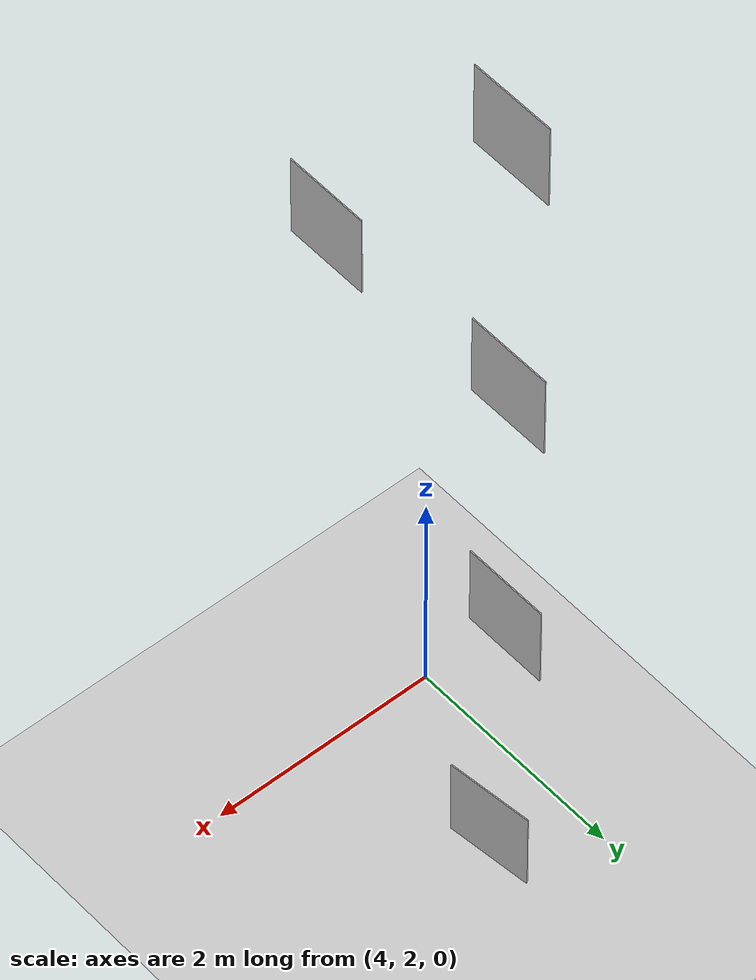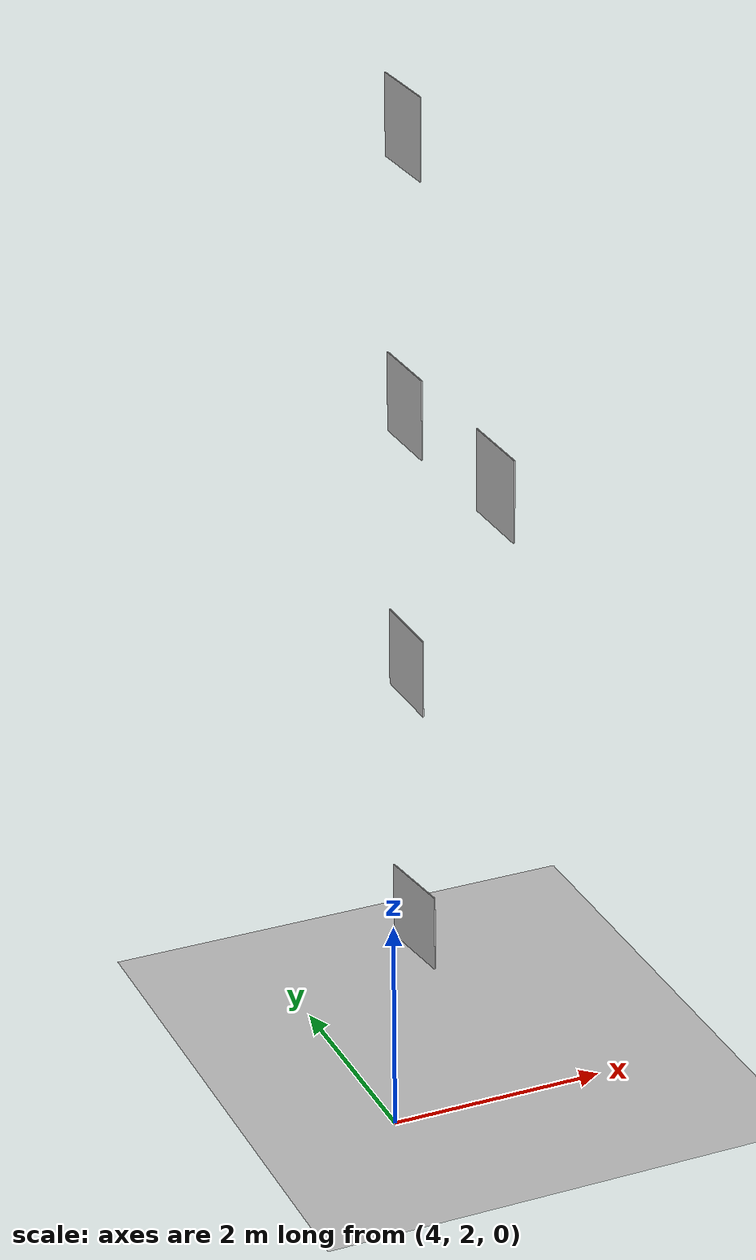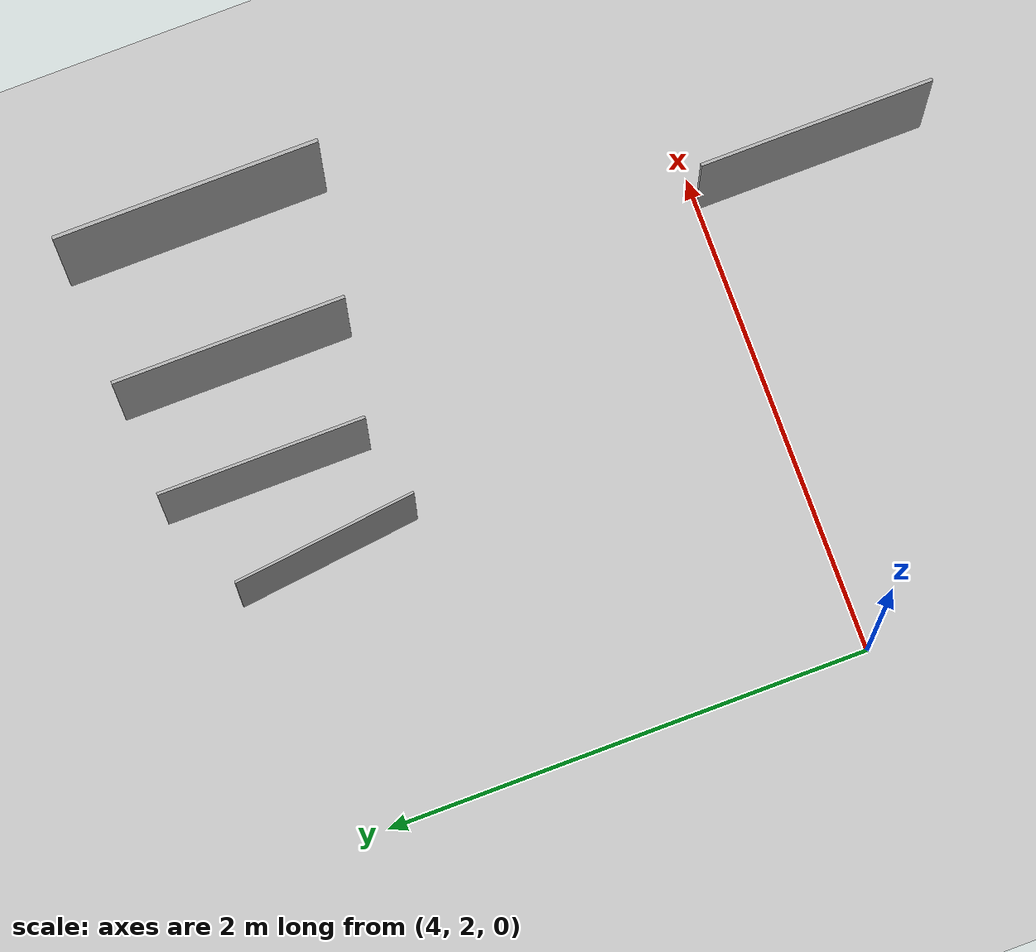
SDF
<sdf version="1.7">
 <world name="default">
  <model name="ground_plane">
   <static>1</static>
   <link name="link">
    <collision name="collision">
     <geometry><plane><normal>0 0 1</normal><size>100 100</size></plane></geometry>
     <surface>
      <contact><collide_bitmask>65535</collide_bitmask></contact>
      <friction><ode><mu>100</mu><mu2>50</mu2></ode></friction>
     </surface>
    </collision>
    <visual name="visual">
     <cast_shadows>0</cast_shadows>
     <geometry><plane><normal>0 0 1</normal><size>100 100</size></plane></geometry>
     <material>
      <script><uri>file://media/materials/scripts/gazebo.material</uri><name>Gazebo/Grey</name></script>
     </material>
    </visual>
   </link>
  </model>
  <model name="WayPoint5_prac">
   <static>1</static>
   <link name="link">
    <collision name="collision"><geometry><box><size>0.75 0.01 0.75</size></box></geometry></collision>
    <visual name="visual">
     <geometry><box><size>0.75 0.01 0.75</size></box></geometry>
     <material>
      <script>
       <uri>model://WayPoint5_prac/materials/scripts</uri>
       <uri>model://WayPoint5_prac/materials/textures</uri>
       <name>vrc/WayPoint5_prac</name>
      </script>
     </material>
    </visual>
   </link>
   <pose>5 3.85592 0.9 0 0 -1.45663</pose>
  </model>
  <model name="WayPoint5_prac2">
   <static>1</static>
   <link name="link">
    <collision name="collision"><geometry><box><size>0.75 0.01 0.75</size></box></geometry></collision>
    <visual name="visual">
     <geometry><box><size>0.75 0.01 0.75</size></box></geometry>
     <material>
      <script>
       <uri>model://WayPoint5_prac2/materials/scripts</uri>
       <uri>model://WayPoint5_prac2/materials/textures</uri>
       <name>vrc/WayPoint5_prac2</name>
      </script>
     </material>
    </visual>
   </link>
   <pose>5 4 3.45 0 0 -1.57</pose>
  </model>
  <model name="WayPoint6_prac">
   <static>1</static>
   <link name="link">
    <collision name="collision"><geometry><box><size>0.75 0.01 0.75</size></box></geometry></collision>
    <visual name="visual">
     <geometry><box><size>0.75 0.01 0.75</size></box></geometry>
     <material>
      <script>
       <uri>model://WayPoint6_prac/materials/scripts</uri>
       <uri>model://WayPoint6_prac/materials/textures</uri>
       <name>vrc/WayPoint6_prac</name>
      </script>
     </material>
    </visual>
   </link>
   <pose>5 4 8.5 0 0 -1.57</pose>
  </model>
  <model name="WayPoint9_prac">
   <static>1</static>
   <link name="link">
    <collision name="collision"><geometry><box><size>0.75 0.01 0.75</size></box></geometry></collision>
    <visual name="visual">
     <geometry><box><size>0.75 0.01 0.75</size></box></geometry>
     <material>
      <script>
       <uri>model://WayPoint9_prac/materials/scripts</uri>
       <uri>model://WayPoint9_prac/materials/textures</uri>
       <name>vrc/WayPoint9_prac</name>
      </script>
     </material>
    </visual>
   </link>
   <pose>5 4 5.95 0 0 -1.57</pose>
  </model>
  <model name="WayPoint9_prac2">
   <static>1</static>
   <link name="link">
    <collision name="collision"><geometry><box><size>0.75 0.01 0.75</size></box></geometry></collision>
    <visual name="visual">
     <geometry><box><size>0.75 0.01 0.75</size></box></geometry>
     <material>
      <script>
       <uri>model://WayPoint9_prac2/materials/scripts</uri>
       <uri>model://WayPoint9_prac2/materials/textures</uri>
       <name>vrc/WayPoint9_prac2</name>
      </script>
     </material>
    </visual>
   </link>
   <pose>5 2.1 5.95 0 0 -1.57</pose>
  </model>
 </world>
</sdf>
